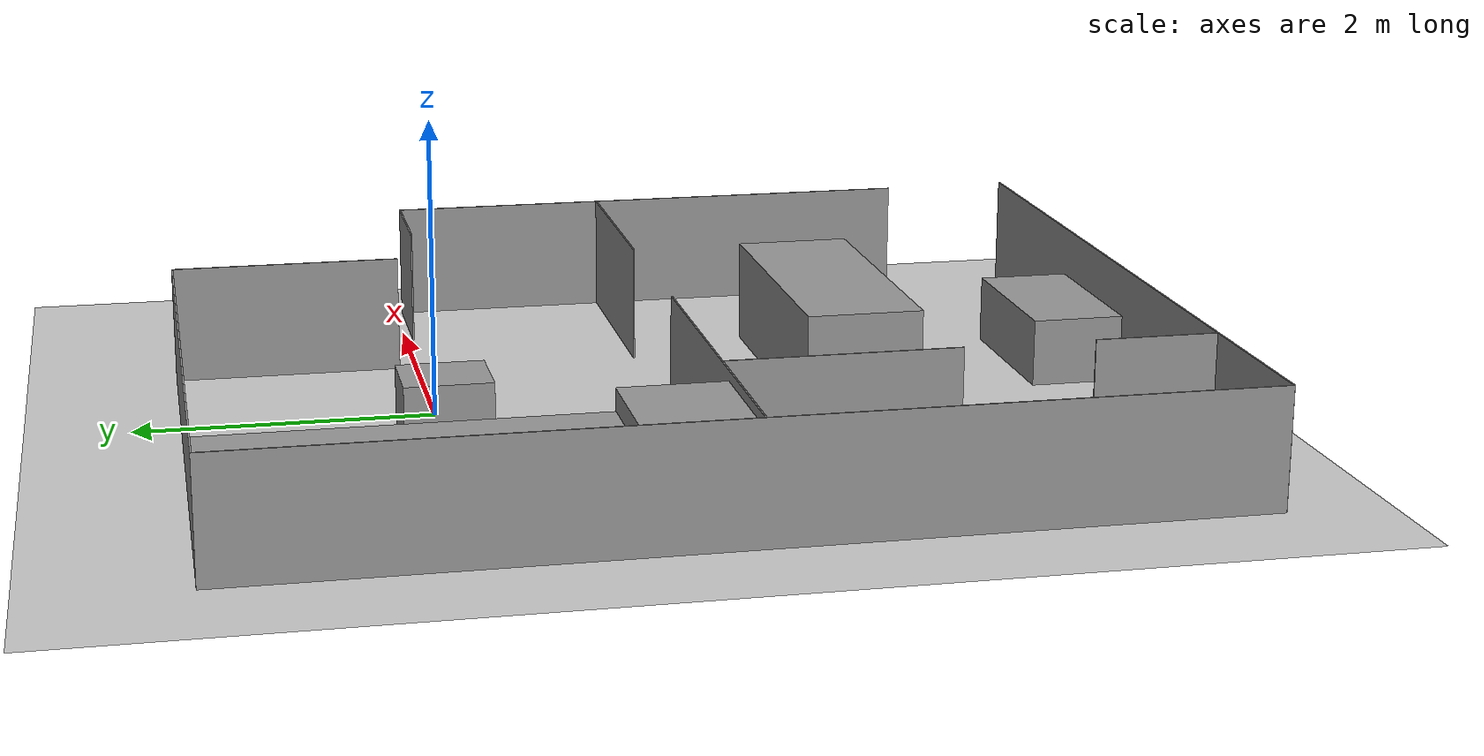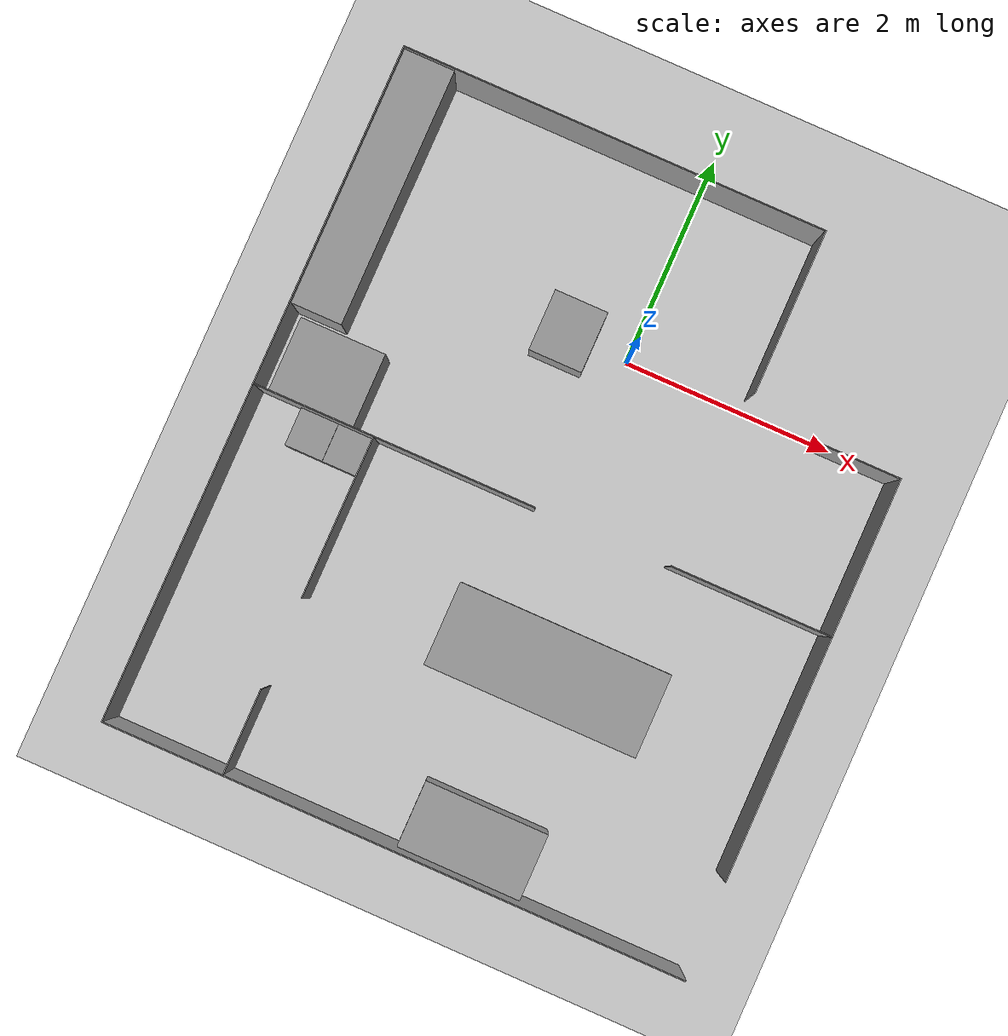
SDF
<sdf version="1.7">
 <world name="default">
  <light name="sun" type="directional">
   <pose>0 0 10 0 -0 0</pose>
   <diffuse>0.8 0.8 0.8 1</diffuse>
   <specular>0.2 0.2 0.2 1</specular>
   <attenuation>
    <range>1000</range>
    <constant>0.9</constant>
    <linear>0.01</linear>
    <quadratic>0.001</quadratic>
   </attenuation>
   <direction>-0.5 0.1 -0.9</direction>
   <spot><inner_angle>0</inner_angle><outer_angle>0</outer_angle><falloff>0</falloff></spot>
  </light>
  <model name="ground_plane">
   <static>1</static>
   <link name="link">
    <collision name="collision">
     <geometry><plane><normal>0 0 1</normal><size>100 100</size></plane></geometry>
     <surface><friction><ode><mu>100</mu><mu2>50</mu2></ode></friction></surface>
    </collision>
    <visual name="visual">
     <cast_shadows>0</cast_shadows>
     <geometry><plane><normal>0 0 1</normal><size>100 100</size></plane></geometry>
     <material>
      <script><uri>file://media/materials/scripts/gazebo.material</uri><name>Gazebo/Grey</name></script>
     </material>
    </visual>
   </link>
  </model>
  <gravity>0 0 -9.8</gravity>
  <magnetic_field>6e-06 2.3e-05 -4.2e-05</magnetic_field>
  <atmosphere type="adiabatic"/>
  <physics name="default_physics" default="0" type="ode">
   <max_step_size>0.001</max_step_size>
   <real_time_factor>1</real_time_factor>
   <real_time_update_rate>1000</real_time_update_rate>
  </physics>
  <scene><ambient>0.4 0.4 0.4 1</ambient><background>0.7 0.7 0.7 1</background><shadows>1</shadows></scene>
  <spherical_coordinates>
   <surface_model>EARTH_WGS84</surface_model>
   <latitude_deg>0</latitude_deg>
   <longitude_deg>0</longitude_deg>
   <elevation>0</elevation>
   <heading_deg>0</heading_deg>
  </spherical_coordinates>
  <model name="Jupiter_Robot_Office">
   <pose>-0.14868 -1.55578 0 0 -0 0</pose>
   <link name="Wall_33">
    <collision name="Wall_33_Collision">
     <geometry><box><size>6.457 0.01 0.8</size></box></geometry>
     <pose>0 0 0.4 0 -0 0</pose>
    </collision>
    <visual name="Wall_33_Visual">
     <pose>0 0 0.4 0 -0 0</pose>
     <geometry><box><size>6.457 0.01 0.8</size></box></geometry>
     <material>
      <script><uri>file://media/materials/scripts/gazebo.material</uri><name>Gazebo/Grey</name></script>
      <ambient>1 1 1 1</ambient>
     </material>
     <meta><layer>0</layer></meta>
    </visual>
    <pose>-2.75825 0.001874 0 0 -0 1.5708</pose>
   </link>
   <link name="Wall_35">
    <collision name="Wall_35_Collision">
     <geometry><box><size>4.026 0.01 0.8</size></box></geometry>
     <pose>0 0 0.4 0 -0 0</pose>
    </collision>
    <visual name="Wall_35_Visual">
     <pose>0 0 0.4 0 -0 0</pose>
     <geometry><box><size>4.026 0.01 0.8</size></box></geometry>
     <material>
      <script><uri>file://media/materials/scripts/gazebo.material</uri><name>Gazebo/Grey</name></script>
      <ambient>1 1 1 1</ambient>
     </material>
     <meta><layer>0</layer></meta>
    </visual>
    <pose>-0.750245 3.22525 0 0 -0 0</pose>
   </link>
   <link name="Wall_38">
    <collision name="Wall_38_Collision">
     <geometry><box><size>2.681 0.01 0.8</size></box></geometry>
     <pose>0 0 0.4 0 -0 0</pose>
    </collision>
    <visual name="Wall_38_Visual">
     <pose>0 0 0.4 0 -0 0</pose>
     <geometry><box><size>2.681 0.01 0.8</size></box></geometry>
     <material>
      <script><uri>file://media/materials/scripts/gazebo.material</uri><name>Gazebo/Grey</name></script>
      <ambient>1 1 1 1</ambient>
     </material>
     <meta><layer>0</layer></meta>
    </visual>
    <pose>-1.41176 -0.012216 0 0 -0 0</pose>
   </link>
   <link name="Wall_40">
    <collision name="Wall_40_Collision">
     <geometry><box><size>5.521 0.01 0.8</size></box></geometry>
     <pose>0 0 0.4 0 -0 0</pose>
    </collision>
    <visual name="Wall_40_Visual">
     <pose>0 0 0.4 0 -0 0</pose>
     <geometry><box><size>5.521 0.01 0.8</size></box></geometry>
     <material>
      <script><uri>file://media/materials/scripts/gazebo.material</uri><name>Gazebo/Grey</name></script>
      <ambient>1 1 1 1</ambient>
     </material>
     <meta><layer>0</layer></meta>
    </visual>
    <pose>0.002746 -3.22537 0 0 -0 0</pose>
   </link>
   <link name="Wall_42">
    <collision name="Wall_42_Collision">
     <geometry><box><size>1.533 0.01 0.8</size></box></geometry>
     <pose>0 0 0.4 0 -0 0</pose>
    </collision>
    <visual name="Wall_42_Visual">
     <pose>0 0 0.4 0 -0 0</pose>
     <geometry><box><size>1.533 0.01 0.8</size></box></geometry>
     <material>
      <script><uri>file://media/materials/scripts/gazebo.material</uri><name>Gazebo/Grey</name></script>
      <ambient>1 1 1 1</ambient>
     </material>
     <meta><layer>0</layer></meta>
    </visual>
    <pose>1.97292 -0.000674 0 0 -0 0</pose>
   </link>
   <link name="Wall_50">
    <collision name="Wall_50_Collision">
     <geometry><box><size>3.815 0.01 0.8</size></box></geometry>
     <pose>0 0 0.4 0 -0 0</pose>
    </collision>
    <visual name="Wall_50_Visual">
     <pose>0 0 0.4 0 -0 0</pose>
     <geometry><box><size>3.815 0.01 0.8</size></box></geometry>
     <material>
      <script><uri>file://media/materials/scripts/gazebo.material</uri><name>Gazebo/Grey</name></script>
      <ambient>1 1 1 1</ambient>
     </material>
     <meta><layer>0</layer></meta>
    </visual>
    <pose>2.73257 -0.404008 0 0 0 -1.5708</pose>
   </link>
   <link name="Wall_52">
    <collision name="Wall_52_Collision">
     <geometry><box><size>0.768 0.01 0.8</size></box></geometry>
     <pose>0 0 0.4 0 -0 0</pose>
    </collision>
    <visual name="Wall_52_Visual">
     <pose>0 0 0.4 0 -0 0</pose>
     <geometry><box><size>0.768 0.01 0.8</size></box></geometry>
     <material>
      <script><uri>file://media/materials/scripts/gazebo.material</uri><name>Gazebo/Grey</name></script>
      <ambient>1 1 1 1</ambient>
     </material>
     <meta><layer>0</layer></meta>
    </visual>
    <pose>2.34513 1.49993 0 0 -0 0</pose>
   </link>
   <link name="Wall_54">
    <collision name="Wall_54_Collision">
     <geometry><box><size>1.557 0.01 0.8</size></box></geometry>
     <pose>0 0 0.4 0 -0 0</pose>
    </collision>
    <visual name="Wall_54_Visual">
     <pose>0 0 0.4 0 -0 0</pose>
     <geometry><box><size>1.557 0.01 0.8</size></box></geometry>
     <material>
      <script><uri>file://media/materials/scripts/gazebo.material</uri><name>Gazebo/Grey</name></script>
      <ambient>1 1 1 1</ambient>
     </material>
     <meta><layer>0</layer></meta>
    </visual>
    <pose>1.27259 2.45181 0 0 0 -1.5708</pose>
   </link>
   <link name="Wall_58">
    <collision name="Wall_58_Collision">
     <geometry><box><size>1.533 0.01 0.8</size></box></geometry>
     <pose>0 0 0.4 0 -0 0</pose>
    </collision>
    <visual name="Wall_58_Visual">
     <pose>0 0 0.4 0 -0 0</pose>
     <geometry><box><size>1.533 0.01 0.8</size></box></geometry>
     <material>
      <script><uri>file://media/materials/scripts/gazebo.material</uri><name>Gazebo/Grey</name></script>
      <ambient>1 1 1 1</ambient>
     </material>
     <meta><layer>0</layer></meta>
    </visual>
    <pose>-1.61051 -0.785028 0 0 0 -1.5708</pose>
   </link>
   <link name="Wall_60">
    <collision name="Wall_60_Collision">
     <geometry><box><size>0.81 0.01 0.8</size></box></geometry>
     <pose>0 0 0.4 0 -0 0</pose>
    </collision>
    <visual name="Wall_60_Visual">
     <pose>0 0 0.4 0 -0 0</pose>
     <geometry><box><size>0.81 0.01 0.8</size></box></geometry>
     <material>
      <script><uri>file://media/materials/scripts/gazebo.material</uri><name>Gazebo/Grey</name></script>
      <ambient>1 1 1 1</ambient>
     </material>
     <meta><layer>0</layer></meta>
    </visual>
    <pose>-1.61197 -2.81724 0 0 -0 1.5708</pose>
   </link>
   <static>1</static>
  </model>
  <model name="unit_box">
   <pose>0.455498 -4.45751 0.230557 0 -0 0</pose>
   <link name="link">
    <inertial>
     <mass>1</mass>
     <inertia>
      <ixx>0.166667</ixx>
      <ixy>0</ixy>
      <ixz>0</ixz>
      <iyy>0.166667</iyy>
      <iyz>0</iyz>
      <izz>0.166667</izz>
     </inertia>
    </inertial>
    <collision name="collision"><geometry><box><size>1.18 0.631819 0.461115</size></box></geometry></collision>
    <visual name="visual">
     <geometry><box><size>1.18 0.631819 0.461115</size></box></geometry>
     <material>
      <script><name>Gazebo/Grey</name><uri>file://media/materials/scripts/gazebo.material</uri></script>
     </material>
    </visual>
   </link>
  </model>
  <model name="unit_box_0">
   <pose>-1.94628 -1.75553 0.16099 0 -0 0</pose>
   <link name="link">
    <inertial>
     <mass>1</mass>
     <inertia>
      <ixx>0.166667</ixx>
      <ixy>0</ixy>
      <ixz>0</ixz>
      <iyy>0.166667</iyy>
      <iyz>0</iyz>
      <izz>0.166667</izz>
     </inertia>
    </inertial>
    <collision name="collision">
     <geometry><box><size>0.364181 0.365068 0.321981</size></box></geometry>
    </collision>
    <visual name="visual">
     <geometry><box><size>0.364181 0.365068 0.321981</size></box></geometry>
     <material>
      <script><name>Gazebo/Grey</name><uri>file://media/materials/scripts/gazebo.material</uri></script>
     </material>
    </visual>
   </link>
  </model>
  <model name="unit_box_0_clone">
   <pose>-2.31194 -1.75553 0.16099 0 -0 0</pose>
   <link name="link">
    <inertial>
     <mass>1</mass>
     <inertia>
      <ixx>0.166667</ixx>
      <ixy>0</ixy>
      <ixz>0</ixz>
      <iyy>0.166667</iyy>
      <iyz>0</iyz>
      <izz>0.166667</izz>
     </inertia>
    </inertial>
    <collision name="collision">
     <geometry><box><size>0.364181 0.365068 0.321981</size></box></geometry>
    </collision>
    <visual name="visual">
     <geometry><box><size>0.364181 0.365068 0.321981</size></box></geometry>
     <material>
      <script><name>Gazebo/Grey</name><uri>file://media/materials/scripts/gazebo.material</uri></script>
     </material>
    </visual>
   </link>
  </model>
  <model name="unit_box_1">
   <pose>0.447502 -2.81353 0.351319 0 -0 1e-06</pose>
   <link name="link">
    <inertial>
     <mass>1</mass>
     <inertia>
      <ixx>0.166667</ixx>
      <ixy>0</ixy>
      <ixz>0</ixz>
      <iyy>0.166667</iyy>
      <iyz>0</iyz>
      <izz>0.166667</izz>
     </inertia>
    </inertial>
    <collision name="collision"><geometry><box><size>2.014 0.788393 0.702638</size></box></geometry></collision>
    <visual name="visual">
     <geometry><box><size>2.014 0.788393 0.702638</size></box></geometry>
     <material>
      <script><name>Gazebo/Grey</name><uri>file://media/materials/scripts/gazebo.material</uri></script>
     </material>
    </visual>
   </link>
  </model>
  <model name="unit_box_1_clone">
   <pose>-2.3659 -1.21496 0.366319 0 -0 0</pose>
   <link name="link">
    <inertial>
     <mass>1</mass>
     <inertia>
      <ixx>0.166667</ixx>
      <ixy>0</ixy>
      <ixz>0</ixz>
      <iyy>0.166667</iyy>
      <iyz>0</iyz>
      <izz>0.166667</izz>
     </inertia>
    </inertial>
    <collision name="collision">
     <geometry><box><size>0.809646 0.696052 0.732638</size></box></geometry>
    </collision>
    <visual name="visual">
     <geometry><box><size>0.809646 0.696052 0.732638</size></box></geometry>
     <material>
      <script><name>Gazebo/Grey</name><uri>file://media/materials/scripts/gazebo.material</uri></script>
     </material>
    </visual>
   </link>
  </model>
  <model name="unit_box_1_clone_0">
   <pose>-2.66106 0.438388 0.366238 6.6e-05 0 1e-06</pose>
   <link name="link">
    <inertial>
     <mass>1</mass>
     <inertia>
      <ixx>0.166667</ixx>
      <ixy>0</ixy>
      <ixz>0</ixz>
      <iyy>0.166667</iyy>
      <iyz>0</iyz>
      <izz>0.166667</izz>
     </inertia>
    </inertial>
    <collision name="collision"><geometry><box><size>0.481331 2.44939 0.732638</size></box></geometry></collision>
    <visual name="visual">
     <geometry><box><size>0.481331 2.44939 0.732638</size></box></geometry>
     <material>
      <script><name>Gazebo/Grey</name><uri>file://media/materials/scripts/gazebo.material</uri></script>
     </material>
    </visual>
   </link>
  </model>
  <model name="unit_box_clone">
   <pose>-0.587286 0 0.230557 0 -0 0</pose>
   <link name="link">
    <inertial>
     <mass>1</mass>
     <inertia>
      <ixx>0.166667</ixx>
      <ixy>0</ixy>
      <ixz>0</ixz>
      <iyy>0.166667</iyy>
      <iyz>0</iyz>
      <izz>0.166667</izz>
     </inertia>
    </inertial>
    <collision name="collision">
     <geometry><box><size>0.510937 0.585559 0.461115</size></box></geometry>
    </collision>
    <visual name="visual">
     <geometry><box><size>0.510937 0.585559 0.461115</size></box></geometry>
     <material>
      <script><name>Gazebo/Grey</name><uri>file://media/materials/scripts/gazebo.material</uri></script>
     </material>
    </visual>
   </link>
  </model>
 </world>
</sdf>
